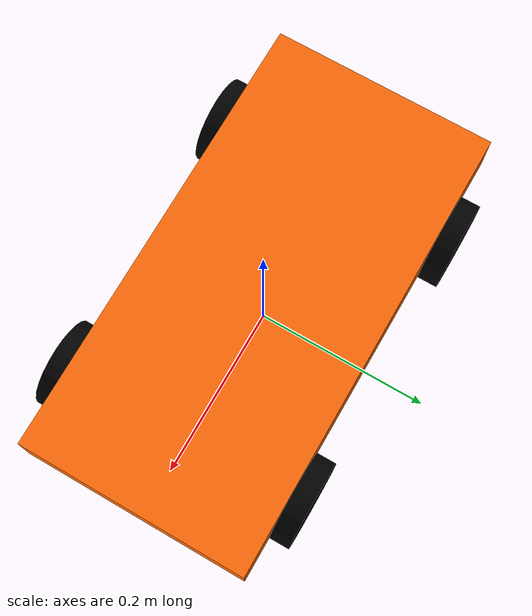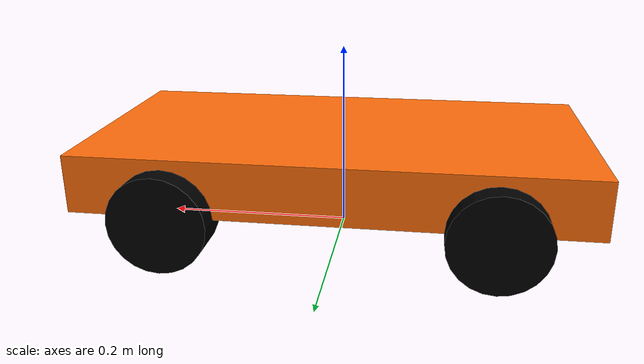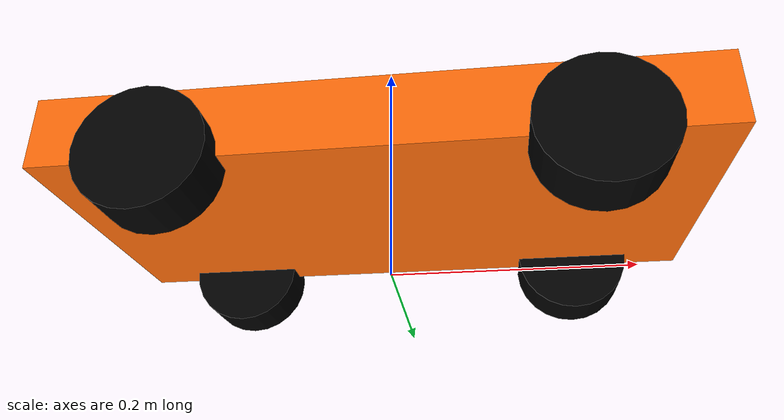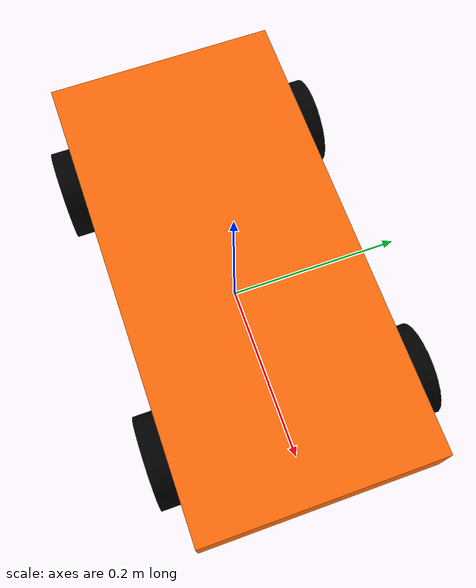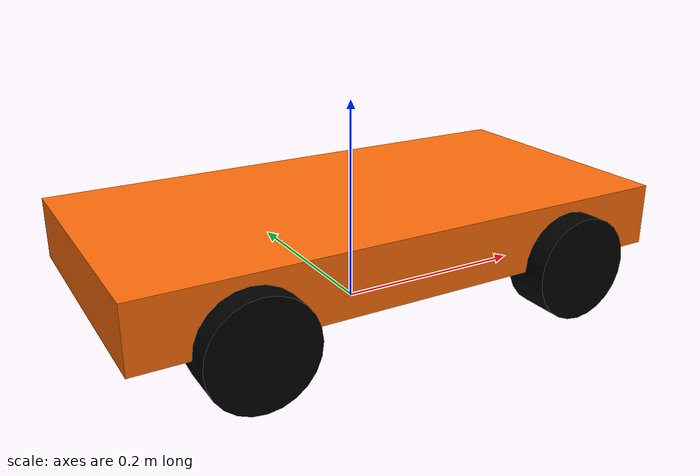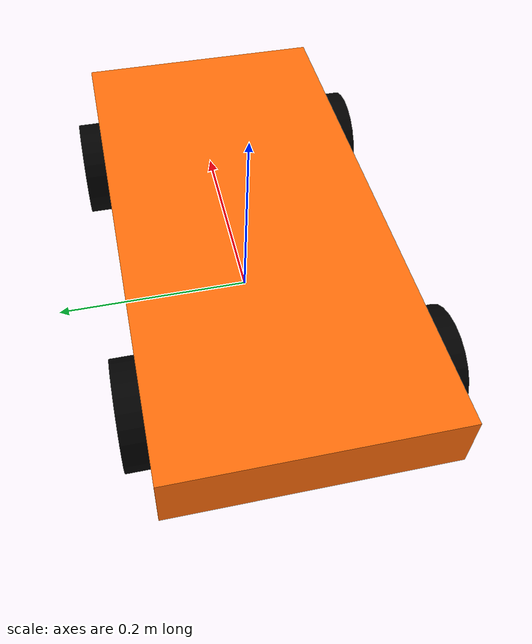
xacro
<?xml version="1.0"?>
<robot xmlns:xacro="http://www.ros.org/wiki/xacro" name="my_robot_static">

  <material name="orange">
    <color rgba="1.0 0.424 0.039 1.0"/>
  </material>
  <material name="black">
    <color rgba="0.0 0.0 0.0 1.0"/>
  </material>
  <material name="grey">
    <color rgba="0.3 0.3 0.3 1.0"/>
  </material>

  <link name="base_link"/>

  <link name="chassis">
    <visual>
      <origin xyz="0 0 0" rpy="0 0 0"/>
      <geometry>
        <box size="0.525 0.26 0.06"/>
      </geometry>
      <material name="orange"/>
    </visual>
  </link>

  <joint name="chassis_joint" type="fixed">
    <parent link="base_link"/>
    <child link="chassis"/>
    <origin xyz="0 0 0.08" rpy="0 0 0"/>
  </joint>

  <link name="rear_right_wheel">
    <visual>
      <origin xyz="0 0 0" rpy="1.5708 0 0"/>
      <geometry>
        <cylinder length="0.045" radius="0.05"/>
      </geometry>
      <material name="black"/>
    </visual>
  </link>

  <joint name="rear_right_wheel_joint" type="fixed">
    <parent link="chassis"/>
    <child link="rear_right_wheel"/>
    <origin xyz="-0.1625 0.13 -0.03" rpy="0 0 0"/>
  </joint>

  <link name="rear_left_wheel">
    <visual>
      <origin xyz="0 0 0" rpy="1.5708 0 0"/>
      <geometry>
        <cylinder length="0.045" radius="0.05"/>
      </geometry>
      <material name="black"/>
    </visual>
  </link>

  <joint name="rear_left_wheel_joint" type="fixed">
    <parent link="chassis"/>
    <child link="rear_left_wheel"/>
    <origin xyz="-0.1625 -0.13 -0.03" rpy="0 0 0"/>
  </joint>

  <link name="front_right_wheel">
    <visual>
      <origin xyz="0 0 0" rpy="1.5708 0 0"/>
      <geometry>
        <cylinder length="0.045" radius="0.05"/>
      </geometry>
      <material name="black"/>
    </visual>
  </link>

  <joint name="front_right_wheel_joint" type="fixed">
    <parent link="chassis"/>
    <child link="front_right_wheel"/>
    <origin xyz="0.1625 0.13 -0.03" rpy="0 0 0"/>
  </joint>

  <link name="front_left_wheel">
    <visual>
      <origin xyz="0 0 0" rpy="1.5708 0 0"/>
      <geometry>
        <cylinder length="0.045" radius="0.05"/>
      </geometry>
      <material name="black"/>
    </visual>
  </link>

  <joint name="front_left_wheel_joint" type="fixed">
    <parent link="chassis"/>
    <child link="front_left_wheel"/>
    <origin xyz="0.1625 -0.13 -0.03" rpy="0 0 0"/>
  </joint>

</robot>
